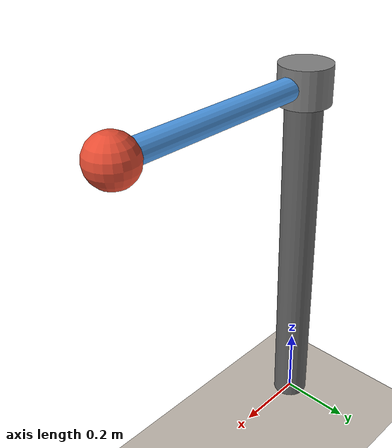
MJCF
<mujoco>
    <include file="../common/materials.xml" />
    <option timestep="0.005" />
    <worldbody>
        <light pos="0 0 3" dir="0 0 -1" directional="true" />
        <geom name="floor" size="0 0 0.01" type="plane" material="motphys-ground" />
        <!-- Support column (static) -->
        <body name="support" pos="0 0 0.5">
            <geom type="cylinder" size="0.05 0.5" rgba="0.4 0.4 0.4 1" />
        </body>
        <body name="rotor" pos="0 0 1">
            <joint name="rotor_joint" type="hinge" axis="0 0 1"
                   stiffness="2.5" damping="0.1" springref="90" />
            <!-- Hub at hinge center -->
            <geom type="cylinder" size="0.07 0.05" rgba="0.5 0.5 0.5 1" />
            <!-- Arm: capsule extending in the +X direction of the body frame.
                 Default capsule axis is Z; euler="0 90 0" rotates it to align with X. -->
            <geom type="capsule" size="0.03 0.3" euler="0 90 0" pos="0.3 0 0"
                  rgba="0.3 0.6 0.9 1" />
            <!-- Tip sphere: makes the arm endpoint clearly visible -->
            <geom type="sphere" size="0.06" pos="0.6 0 0" rgba="0.9 0.3 0.2 1" />
        </body>
    </worldbody>
</mujoco>

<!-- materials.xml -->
<!--
Common textures, colors and materials to be used throughout this suite. Some
materials such as xxx_highlight are activated on occurence of certain events,
for example receiving a positive reward.
-->
<mujoco>
  <asset>
    <texture name="motphys-ground" type="2d" file="motphys-ground.png" />
    <material name="motphys-ground" texture="motphys-ground" texuniform="true"
      texrepeat="0.4 0.4" />
  </asset>
</mujoco>
